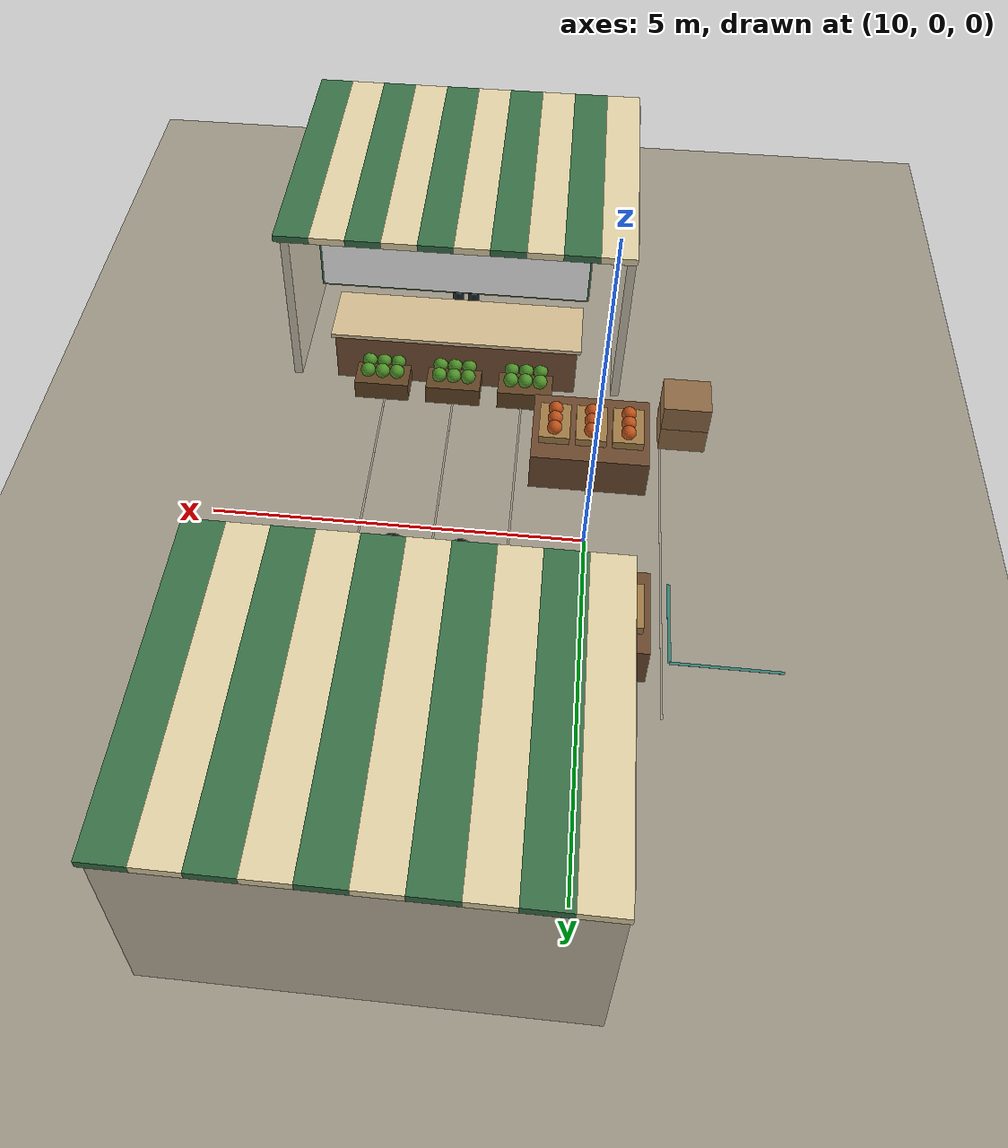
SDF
<sdf version="1.10">
 <world name="swan_market">
  <model name="ground">
   <static>true</static>
   <pose>15 0 -0.1 0 0 0</pose>
   <link name="body">
    <collision name="box_collision"><geometry><box><size>46 24 0.2</size></box></geometry></collision>
    <visual name="box_visual">
     <geometry><box><size>46 24 0.2</size></box></geometry>
     <material><ambient>0.64 0.61 0.55 1</ambient><diffuse>0.64 0.61 0.55 1</diffuse></material>
    </visual>
   </link>
  </model>
  <model name="paving_joint_9">
   <static>true</static>
   <pose>9 0 0.0045 0 0 0</pose>
   <link name="body">
    <visual name="box_visual">
     <geometry><box><size>0.025 5.2 0.001</size></box></geometry>
     <material><ambient>0.67 0.64 0.57 1</ambient><diffuse>0.67 0.64 0.57 1</diffuse></material>
    </visual>
   </link>
  </model>
  <model name="paving_joint_10">
   <static>true</static>
   <pose>10 0 0.0045 0 0 0</pose>
   <link name="body">
    <visual name="box_visual">
     <geometry><box><size>0.025 5.2 0.001</size></box></geometry>
     <material><ambient>0.67 0.64 0.57 1</ambient><diffuse>0.67 0.64 0.57 1</diffuse></material>
    </visual>
   </link>
  </model>
  <model name="paving_joint_11">
   <static>true</static>
   <pose>11 0 0.0045 0 0 0</pose>
   <link name="body">
    <visual name="box_visual">
     <geometry><box><size>0.025 5.2 0.001</size></box></geometry>
     <material><ambient>0.67 0.64 0.57 1</ambient><diffuse>0.67 0.64 0.57 1</diffuse></material>
    </visual>
   </link>
  </model>
  <model name="paving_joint_12">
   <static>true</static>
   <pose>12 0 0.0045 0 0 0</pose>
   <link name="body">
    <visual name="box_visual">
     <geometry><box><size>0.025 5.2 0.001</size></box></geometry>
     <material><ambient>0.67 0.64 0.57 1</ambient><diffuse>0.67 0.64 0.57 1</diffuse></material>
    </visual>
   </link>
  </model>
  <model name="paving_joint_13">
   <static>true</static>
   <pose>13 0 0.0045 0 0 0</pose>
   <link name="body">
    <visual name="box_visual">
     <geometry><box><size>0.025 5.2 0.001</size></box></geometry>
     <material><ambient>0.67 0.64 0.57 1</ambient><diffuse>0.67 0.64 0.57 1</diffuse></material>
    </visual>
   </link>
  </model>
  <model name="stall_01">
   <static>true</static>
   <pose>12 4.45 0 0 0 0</pose>
   <link name="body">
    <collision name="rear_collision">
     <pose>0 1.65 1.4 0 0 0</pose>
     <geometry><box><size>4.8 0.15 2.8</size></box></geometry>
    </collision>
    <visual name="rear_visual">
     <pose>0 1.65 1.4 0 0 0</pose>
     <geometry><box><size>4.8 0.15 2.8</size></box></geometry>
     <material><ambient>0.78 0.74 0.65 1</ambient><diffuse>0.78 0.74 0.65 1</diffuse></material>
    </visual>
    <collision name="side_-2.35_collision">
     <pose>-2.35 0 1.4 0 0 0</pose>
     <geometry><box><size>0.12 3.3 2.8</size></box></geometry>
    </collision>
    <visual name="side_-2.35_visual">
     <pose>-2.35 0 1.4 0 0 0</pose>
     <geometry><box><size>0.12 3.3 2.8</size></box></geometry>
     <material><ambient>0.81 0.77 0.69 1</ambient><diffuse>0.81 0.77 0.69 1</diffuse></material>
    </visual>
    <collision name="side_2.35_collision">
     <pose>2.35 0 1.4 0 0 0</pose>
     <geometry><box><size>0.12 3.3 2.8</size></box></geometry>
    </collision>
    <visual name="side_2.35_visual">
     <pose>2.35 0 1.4 0 0 0</pose>
     <geometry><box><size>0.12 3.3 2.8</size></box></geometry>
     <material><ambient>0.81 0.77 0.69 1</ambient><diffuse>0.81 0.77 0.69 1</diffuse></material>
    </visual>
    <collision name="counter_collision">
     <pose>0 -1.22 0.4 0 0 0</pose>
     <geometry><box><size>3.5 0.85 0.8</size></box></geometry>
    </collision>
    <visual name="counter_visual">
     <pose>0 -1.22 0.4 0 0 0</pose>
     <geometry><box><size>3.5 0.85 0.8</size></box></geometry>
     <material><ambient>0.47 0.32 0.21 1</ambient><diffuse>0.47 0.32 0.21 1</diffuse></material>
    </visual>
    <collision name="counter_top_collision">
     <pose>0 -1.22 0.83 0 0 0</pose>
     <geometry><box><size>3.6 0.95 0.06</size></box></geometry>
    </collision>
    <visual name="counter_top_visual">
     <pose>0 -1.22 0.83 0 0 0</pose>
     <geometry><box><size>3.6 0.95 0.06</size></box></geometry>
     <material><ambient>0.86 0.77 0.59 1</ambient><diffuse>0.86 0.77 0.59 1</diffuse></material>
    </visual>
    <collision name="awning_0_collision">
     <pose>-2.16 -0.1 2.78 0 0 0</pose>
     <geometry><box><size>0.48 3.85 0.1</size></box></geometry>
    </collision>
    <visual name="awning_0_visual">
     <pose>-2.16 -0.1 2.78 0 0 0</pose>
     <geometry><box><size>0.48 3.85 0.1</size></box></geometry>
     <material><ambient>0.92 0.86 0.68 1</ambient><diffuse>0.92 0.86 0.68 1</diffuse></material>
    </visual>
    <collision name="awning_1_collision">
     <pose>-1.68 -0.1 2.78 0 0 0</pose>
     <geometry><box><size>0.48 3.85 0.1</size></box></geometry>
    </collision>
    <visual name="awning_1_visual">
     <pose>-1.68 -0.1 2.78 0 0 0</pose>
     <geometry><box><size>0.48 3.85 0.1</size></box></geometry>
     <material><ambient>0.23 0.46 0.29 1</ambient><diffuse>0.23 0.46 0.29 1</diffuse></material>
    </visual>
    <collision name="awning_2_collision">
     <pose>-1.2 -0.1 2.78 0 0 0</pose>
     <geometry><box><size>0.48 3.85 0.1</size></box></geometry>
    </collision>
    <visual name="awning_2_visual">
     <pose>-1.2 -0.1 2.78 0 0 0</pose>
     <geometry><box><size>0.48 3.85 0.1</size></box></geometry>
     <material><ambient>0.92 0.86 0.68 1</ambient><diffuse>0.92 0.86 0.68 1</diffuse></material>
    </visual>
    <collision name="awning_3_collision">
     <pose>-0.72 -0.1 2.78 0 0 0</pose>
     <geometry><box><size>0.48 3.85 0.1</size></box></geometry>
    </collision>
    <visual name="awning_3_visual">
     <pose>-0.72 -0.1 2.78 0 0 0</pose>
     <geometry><box><size>0.48 3.85 0.1</size></box></geometry>
     <material><ambient>0.23 0.46 0.29 1</ambient><diffuse>0.23 0.46 0.29 1</diffuse></material>
    </visual>
    <collision name="awning_4_collision">
     <pose>-0.24 -0.1 2.78 0 0 0</pose>
     <geometry><box><size>0.48 3.85 0.1</size></box></geometry>
    </collision>
    <visual name="awning_4_visual">
     <pose>-0.24 -0.1 2.78 0 0 0</pose>
     <geometry><box><size>0.48 3.85 0.1</size></box></geometry>
     <material><ambient>0.92 0.86 0.68 1</ambient><diffuse>0.92 0.86 0.68 1</diffuse></material>
    </visual>
    <collision name="awning_5_collision">
     <pose>0.24 -0.1 2.78 0 0 0</pose>
     <geometry><box><size>0.48 3.85 0.1</size></box></geometry>
    </collision>
    <visual name="awning_5_visual">
     <pose>0.24 -0.1 2.78 0 0 0</pose>
     <geometry><box><size>0.48 3.85 0.1</size></box></geometry>
     <material><ambient>0.23 0.46 0.29 1</ambient><diffuse>0.23 0.46 0.29 1</diffuse></material>
    </visual>
    <collision name="awning_6_collision">
     <pose>0.72 -0.1 2.78 0 0 0</pose>
     <geometry><box><size>0.48 3.85 0.1</size></box></geometry>
    </collision>
    <visual name="awning_6_visual">
     <pose>0.72 -0.1 2.78 0 0 0</pose>
     <geometry><box><size>0.48 3.85 0.1</size></box></geometry>
     <material><ambient>0.92 0.86 0.68 1</ambient><diffuse>0.92 0.86 0.68 1</diffuse></material>
    </visual>
    <collision name="awning_7_collision">
     <pose>1.2 -0.1 2.78 0 0 0</pose>
     <geometry><box><size>0.48 3.85 0.1</size></box></geometry>
    </collision>
    <visual name="awning_7_visual">
     <pose>1.2 -0.1 2.78 0 0 0</pose>
     <geometry><box><size>0.48 3.85 0.1</size></box></geometry>
     <material><ambient>0.23 0.46 0.29 1</ambient><diffuse>0.23 0.46 0.29 1</diffuse></material>
    </visual>
    <collision name="awning_8_collision">
     <pose>1.68 -0.1 2.78 0 0 0</pose>
     <geometry><box><size>0.48 3.85 0.1</size></box></geometry>
    </collision>
    <visual name="awning_8_visual">
     <pose>1.68 -0.1 2.78 0 0 0</pose>
     <geometry><box><size>0.48 3.85 0.1</size></box></geometry>
     <material><ambient>0.92 0.86 0.68 1</ambient><diffuse>0.92 0.86 0.68 1</diffuse></material>
    </visual>
    <collision name="awning_9_collision">
     <pose>2.16 -0.1 2.78 0 0 0</pose>
     <geometry><box><size>0.48 3.85 0.1</size></box></geometry>
    </collision>
    <visual name="awning_9_visual">
     <pose>2.16 -0.1 2.78 0 0 0</pose>
     <geometry><box><size>0.48 3.85 0.1</size></box></geometry>
     <material><ambient>0.23 0.46 0.29 1</ambient><diffuse>0.23 0.46 0.29 1</diffuse></material>
    </visual>
    <collision name="crate_-1_collision">
     <pose>-1.04 -1.77 0.15 0 0 0</pose>
     <geometry><box><size>0.78 0.6 0.3</size></box></geometry>
    </collision>
    <visual name="crate_-1_visual">
     <pose>-1.04 -1.77 0.15 0 0 0</pose>
     <geometry><box><size>0.78 0.6 0.3</size></box></geometry>
     <material><ambient>0.4 0.28 0.15 1</ambient><diffuse>0.4 0.28 0.15 1</diffuse></material>
    </visual>
    <visual name="produce_-1_0_visual">
     <pose>-1.25 -1.88 0.39 0 0 0</pose>
     <geometry><sphere><radius>0.105</radius></sphere></geometry>
     <material><ambient>0.31 0.58 0.16 1</ambient><diffuse>0.31 0.58 0.16 1</diffuse></material>
    </visual>
    <visual name="produce_-1_1_visual">
     <pose>-1.04 -1.88 0.39 0 0 0</pose>
     <geometry><sphere><radius>0.105</radius></sphere></geometry>
     <material><ambient>0.31 0.58 0.16 1</ambient><diffuse>0.31 0.58 0.16 1</diffuse></material>
    </visual>
    <visual name="produce_-1_2_visual">
     <pose>-0.83 -1.88 0.39 0 0 0</pose>
     <geometry><sphere><radius>0.105</radius></sphere></geometry>
     <material><ambient>0.31 0.58 0.16 1</ambient><diffuse>0.31 0.58 0.16 1</diffuse></material>
    </visual>
    <visual name="produce_-1_3_visual">
     <pose>-1.25 -1.66 0.39 0 0 0</pose>
     <geometry><sphere><radius>0.105</radius></sphere></geometry>
     <material><ambient>0.31 0.58 0.16 1</ambient><diffuse>0.31 0.58 0.16 1</diffuse></material>
    </visual>
    <visual name="produce_-1_4_visual">
     <pose>-1.04 -1.66 0.39 0 0 0</pose>
     <geometry><sphere><radius>0.105</radius></sphere></geometry>
     <material><ambient>0.31 0.58 0.16 1</ambient><diffuse>0.31 0.58 0.16 1</diffuse></material>
    </visual>
    <visual name="produce_-1_5_visual">
     <pose>-0.83 -1.66 0.39 0 0 0</pose>
     <geometry><sphere><radius>0.105</radius></sphere></geometry>
     <material><ambient>0.31 0.58 0.16 1</ambient><diffuse>0.31 0.58 0.16 1</diffuse></material>
    </visual>
    <collision name="crate_0_collision">
     <pose>0 -1.77 0.15 0 0 0</pose>
     <geometry><box><size>0.78 0.6 0.3</size></box></geometry>
    </collision>
    <visual name="crate_0_visual">
     <pose>0 -1.77 0.15 0 0 0</pose>
     <geometry><box><size>0.78 0.6 0.3</size></box></geometry>
     <material><ambient>0.4 0.28 0.15 1</ambient><diffuse>0.4 0.28 0.15 1</diffuse></material>
    </visual>
    <visual name="produce_0_0_visual">
     <pose>-0.21 -1.88 0.39 0 0 0</pose>
     <geometry><sphere><radius>0.105</radius></sphere></geometry>
     <material><ambient>0.31 0.58 0.16 1</ambient><diffuse>0.31 0.58 0.16 1</diffuse></material>
    </visual>
    <visual name="produce_0_1_visual">
     <pose>0 -1.88 0.39 0 0 0</pose>
     <geometry><sphere><radius>0.105</radius></sphere></geometry>
     <material><ambient>0.31 0.58 0.16 1</ambient><diffuse>0.31 0.58 0.16 1</diffuse></material>
    </visual>
    <visual name="produce_0_2_visual">
     <pose>0.21 -1.88 0.39 0 0 0</pose>
     <geometry><sphere><radius>0.105</radius></sphere></geometry>
     <material><ambient>0.31 0.58 0.16 1</ambient><diffuse>0.31 0.58 0.16 1</diffuse></material>
    </visual>
    <visual name="produce_0_3_visual">
     <pose>-0.21 -1.66 0.39 0 0 0</pose>
     <geometry><sphere><radius>0.105</radius></sphere></geometry>
     <material><ambient>0.31 0.58 0.16 1</ambient><diffuse>0.31 0.58 0.16 1</diffuse></material>
    </visual>
    <visual name="produce_0_4_visual">
     <pose>0 -1.66 0.39 0 0 0</pose>
     <geometry><sphere><radius>0.105</radius></sphere></geometry>
     <material><ambient>0.31 0.58 0.16 1</ambient><diffuse>0.31 0.58 0.16 1</diffuse></material>
    </visual>
    <visual name="produce_0_5_visual">
     <pose>0.21 -1.66 0.39 0 0 0</pose>
     <geometry><sphere><radius>0.105</radius></sphere></geometry>
     <material><ambient>0.31 0.58 0.16 1</ambient><diffuse>0.31 0.58 0.16 1</diffuse></material>
    </visual>
    <collision name="crate_1_collision">
     <pose>1.04 -1.77 0.15 0 0 0</pose>
     <geometry><box><size>0.78 0.6 0.3</size></box></geometry>
    </collision>
    <visual name="crate_1_visual">
     <pose>1.04 -1.77 0.15 0 0 0</pose>
     <geometry><box><size>0.78 0.6 0.3</size></box></geometry>
     <material><ambient>0.4 0.28 0.15 1</ambient><diffuse>0.4 0.28 0.15 1</diffuse></material>
    </visual>
    <visual name="produce_1_0_visual">
     <pose>0.83 -1.88 0.39 0 0 0</pose>
     <geometry><sphere><radius>0.105</radius></sphere></geometry>
     <material><ambient>0.31 0.58 0.16 1</ambient><diffuse>0.31 0.58 0.16 1</diffuse></material>
    </visual>
    <visual name="produce_1_1_visual">
     <pose>1.04 -1.88 0.39 0 0 0</pose>
     <geometry><sphere><radius>0.105</radius></sphere></geometry>
     <material><ambient>0.31 0.58 0.16 1</ambient><diffuse>0.31 0.58 0.16 1</diffuse></material>
    </visual>
    <visual name="produce_1_2_visual">
     <pose>1.25 -1.88 0.39 0 0 0</pose>
     <geometry><sphere><radius>0.105</radius></sphere></geometry>
     <material><ambient>0.31 0.58 0.16 1</ambient><diffuse>0.31 0.58 0.16 1</diffuse></material>
    </visual>
    <visual name="produce_1_3_visual">
     <pose>0.83 -1.66 0.39 0 0 0</pose>
     <geometry><sphere><radius>0.105</radius></sphere></geometry>
     <material><ambient>0.31 0.58 0.16 1</ambient><diffuse>0.31 0.58 0.16 1</diffuse></material>
    </visual>
    <visual name="produce_1_4_visual">
     <pose>1.04 -1.66 0.39 0 0 0</pose>
     <geometry><sphere><radius>0.105</radius></sphere></geometry>
     <material><ambient>0.31 0.58 0.16 1</ambient><diffuse>0.31 0.58 0.16 1</diffuse></material>
    </visual>
    <visual name="produce_1_5_visual">
     <pose>1.25 -1.66 0.39 0 0 0</pose>
     <geometry><sphere><radius>0.105</radius></sphere></geometry>
     <material><ambient>0.31 0.58 0.16 1</ambient><diffuse>0.31 0.58 0.16 1</diffuse></material>
    </visual>
   </link>
  </model>
  <model name="signboard_1">
   <static>true</static>
   <pose>12 2.69 2.24 0 0 0</pose>
   <link name="body">
    <collision name="box_collision"><geometry><box><size>3.65 0.08 0.72</size></box></geometry></collision>
    <visual name="box_visual">
     <geometry><box><size>3.65 0.08 0.72</size></box></geometry>
     <material><ambient>0.23 0.46 0.29 1</ambient><diffuse>0.23 0.46 0.29 1</diffuse></material>
    </visual>
   </link>
  </model>
  <model name="sign_shop_1">
   <static>true</static>
   <pose>12 2.642 2.24 0 0 0</pose>
   <link name="body">
    <visual name="lettering">
     <geometry>
      <mesh><uri>model://swan_market_assets/meshes/shop_1.dae</uri><scale>3.6 1 0.675</scale></mesh>
     </geometry>
     <material>
      <ambient>1 1 1 1</ambient>
      <diffuse>1 1 1 1</diffuse>
      <emissive>0 0 0 1</emissive>
      <pbr>
       <metal>
        <albedo_map>model://swan_market_assets/materials/textures/shop_1.png</albedo_map>
        <metalness>0</metalness>
        <roughness>1</roughness>
       </metal>
      </pbr>
     </material>
    </visual>
   </link>
  </model>
  <model name="stall_05">
   <static>true</static>
   <pose>12 -4.45 0 0 0 0</pose>
   <link name="body">
    <collision name="rear_collision">
     <pose>0 -1.65 1.4 0 0 0</pose>
     <geometry><box><size>4.8 0.15 2.8</size></box></geometry>
    </collision>
    <visual name="rear_visual">
     <pose>0 -1.65 1.4 0 0 0</pose>
     <geometry><box><size>4.8 0.15 2.8</size></box></geometry>
     <material><ambient>0.78 0.74 0.65 1</ambient><diffuse>0.78 0.74 0.65 1</diffuse></material>
    </visual>
    <collision name="side_-2.35_collision">
     <pose>-2.35 0 1.4 0 0 0</pose>
     <geometry><box><size>0.12 3.3 2.8</size></box></geometry>
    </collision>
    <visual name="side_-2.35_visual">
     <pose>-2.35 0 1.4 0 0 0</pose>
     <geometry><box><size>0.12 3.3 2.8</size></box></geometry>
     <material><ambient>0.81 0.77 0.69 1</ambient><diffuse>0.81 0.77 0.69 1</diffuse></material>
    </visual>
    <collision name="side_2.35_collision">
     <pose>2.35 0 1.4 0 0 0</pose>
     <geometry><box><size>0.12 3.3 2.8</size></box></geometry>
    </collision>
    <visual name="side_2.35_visual">
     <pose>2.35 0 1.4 0 0 0</pose>
     <geometry><box><size>0.12 3.3 2.8</size></box></geometry>
     <material><ambient>0.81 0.77 0.69 1</ambient><diffuse>0.81 0.77 0.69 1</diffuse></material>
    </visual>
    <collision name="counter_collision">
     <pose>0 1.22 0.4 0 0 0</pose>
     <geometry><box><size>3.5 0.85 0.8</size></box></geometry>
    </collision>
    <visual name="counter_visual">
     <pose>0 1.22 0.4 0 0 0</pose>
     <geometry><box><size>3.5 0.85 0.8</size></box></geometry>
     <material><ambient>0.47 0.32 0.21 1</ambient><diffuse>0.47 0.32 0.21 1</diffuse></material>
    </visual>
    <collision name="counter_top_collision">
     <pose>0 1.22 0.83 0 0 0</pose>
     <geometry><box><size>3.6 0.95 0.06</size></box></geometry>
    </collision>
    <visual name="counter_top_visual">
     <pose>0 1.22 0.83 0 0 0</pose>
     <geometry><box><size>3.6 0.95 0.06</size></box></geometry>
     <material><ambient>0.86 0.77 0.59 1</ambient><diffuse>0.86 0.77 0.59 1</diffuse></material>
    </visual>
    <collision name="awning_0_collision">
     <pose>-2.16 0.1 2.78 0 0 0</pose>
     <geometry><box><size>0.48 3.85 0.1</size></box></geometry>
    </collision>
    <visual name="awning_0_visual">
     <pose>-2.16 0.1 2.78 0 0 0</pose>
     <geometry><box><size>0.48 3.85 0.1</size></box></geometry>
     <material><ambient>0.92 0.86 0.68 1</ambient><diffuse>0.92 0.86 0.68 1</diffuse></material>
    </visual>
    <collision name="awning_1_collision">
     <pose>-1.68 0.1 2.78 0 0 0</pose>
     <geometry><box><size>0.48 3.85 0.1</size></box></geometry>
    </collision>
    <visual name="awning_1_visual">
     <pose>-1.68 0.1 2.78 0 0 0</pose>
     <geometry><box><size>0.48 3.85 0.1</size></box></geometry>
     <material><ambient>0.23 0.46 0.29 1</ambient><diffuse>0.23 0.46 0.29 1</diffuse></material>
    </visual>
    <collision name="awning_2_collision">
     <pose>-1.2 0.1 2.78 0 0 0</pose>
     <geometry><box><size>0.48 3.85 0.1</size></box></geometry>
    </collision>
    <visual name="awning_2_visual">
     <pose>-1.2 0.1 2.78 0 0 0</pose>
     <geometry><box><size>0.48 3.85 0.1</size></box></geometry>
     <material><ambient>0.92 0.86 0.68 1</ambient><diffuse>0.92 0.86 0.68 1</diffuse></material>
    </visual>
    <collision name="awning_3_collision">
     <pose>-0.72 0.1 2.78 0 0 0</pose>
     <geometry><box><size>0.48 3.85 0.1</size></box></geometry>
    </collision>
    <visual name="awning_3_visual">
     <pose>-0.72 0.1 2.78 0 0 0</pose>
     <geometry><box><size>0.48 3.85 0.1</size></box></geometry>
     <material><ambient>0.23 0.46 0.29 1</ambient><diffuse>0.23 0.46 0.29 1</diffuse></material>
    </visual>
    <collision name="awning_4_collision">
     <pose>-0.24 0.1 2.78 0 0 0</pose>
     <geometry><box><size>0.48 3.85 0.1</size></box></geometry>
    </collision>
    <visual name="awning_4_visual">
     <pose>-0.24 0.1 2.78 0 0 0</pose>
     <geometry><box><size>0.48 3.85 0.1</size></box></geometry>
     <material><ambient>0.92 0.86 0.68 1</ambient><diffuse>0.92 0.86 0.68 1</diffuse></material>
    </visual>
    <collision name="awning_5_collision">
     <pose>0.24 0.1 2.78 0 0 0</pose>
     <geometry><box><size>0.48 3.85 0.1</size></box></geometry>
    </collision>
    <visual name="awning_5_visual">
     <pose>0.24 0.1 2.78 0 0 0</pose>
     <geometry><box><size>0.48 3.85 0.1</size></box></geometry>
     <material><ambient>0.23 0.46 0.29 1</ambient><diffuse>0.23 0.46 0.29 1</diffuse></material>
    </visual>
    <collision name="awning_6_collision">
     <pose>0.72 0.1 2.78 0 0 0</pose>
     <geometry><box><size>0.48 3.85 0.1</size></box></geometry>
    </collision>
    <visual name="awning_6_visual">
     <pose>0.72 0.1 2.78 0 0 0</pose>
     <geometry><box><size>0.48 3.85 0.1</size></box></geometry>
     <material><ambient>0.92 0.86 0.68 1</ambient><diffuse>0.92 0.86 0.68 1</diffuse></material>
    </visual>
    <collision name="awning_7_collision">
     <pose>1.2 0.1 2.78 0 0 0</pose>
     <geometry><box><size>0.48 3.85 0.1</size></box></geometry>
    </collision>
    <visual name="awning_7_visual">
     <pose>1.2 0.1 2.78 0 0 0</pose>
     <geometry><box><size>0.48 3.85 0.1</size></box></geometry>
     <material><ambient>0.23 0.46 0.29 1</ambient><diffuse>0.23 0.46 0.29 1</diffuse></material>
    </visual>
    <collision name="awning_8_collision">
     <pose>1.68 0.1 2.78 0 0 0</pose>
     <geometry><box><size>0.48 3.85 0.1</size></box></geometry>
    </collision>
    <visual name="awning_8_visual">
     <pose>1.68 0.1 2.78 0 0 0</pose>
     <geometry><box><size>0.48 3.85 0.1</size></box></geometry>
     <material><ambient>0.92 0.86 0.68 1</ambient><diffuse>0.92 0.86 0.68 1</diffuse></material>
    </visual>
    <collision name="awning_9_collision">
     <pose>2.16 0.1 2.78 0 0 0</pose>
     <geometry><box><size>0.48 3.85 0.1</size></box></geometry>
    </collision>
    <visual name="awning_9_visual">
     <pose>2.16 0.1 2.78 0 0 0</pose>
     <geometry><box><size>0.48 3.85 0.1</size></box></geometry>
     <material><ambient>0.23 0.46 0.29 1</ambient><diffuse>0.23 0.46 0.29 1</diffuse></material>
    </visual>
    <collision name="crate_-1_collision">
     <pose>-1.04 1.77 0.15 0 0 0</pose>
     <geometry><box><size>0.78 0.6 0.3</size></box></geometry>
    </collision>
    <visual name="crate_-1_visual">
     <pose>-1.04 1.77 0.15 0 0 0</pose>
     <geometry><box><size>0.78 0.6 0.3</size></box></geometry>
     <material><ambient>0.4 0.28 0.15 1</ambient><diffuse>0.4 0.28 0.15 1</diffuse></material>
    </visual>
    <visual name="produce_-1_0_visual">
     <pose>-1.25 1.66 0.39 0 0 0</pose>
     <geometry><sphere><radius>0.105</radius></sphere></geometry>
     <material><ambient>0.31 0.58 0.16 1</ambient><diffuse>0.31 0.58 0.16 1</diffuse></material>
    </visual>
    <visual name="produce_-1_1_visual">
     <pose>-1.04 1.66 0.39 0 0 0</pose>
     <geometry><sphere><radius>0.105</radius></sphere></geometry>
     <material><ambient>0.31 0.58 0.16 1</ambient><diffuse>0.31 0.58 0.16 1</diffuse></material>
    </visual>
    <visual name="produce_-1_2_visual">
     <pose>-0.83 1.66 0.39 0 0 0</pose>
     <geometry><sphere><radius>0.105</radius></sphere></geometry>
     <material><ambient>0.31 0.58 0.16 1</ambient><diffuse>0.31 0.58 0.16 1</diffuse></material>
    </visual>
    <visual name="produce_-1_3_visual">
     <pose>-1.25 1.88 0.39 0 0 0</pose>
     <geometry><sphere><radius>0.105</radius></sphere></geometry>
     <material><ambient>0.31 0.58 0.16 1</ambient><diffuse>0.31 0.58 0.16 1</diffuse></material>
    </visual>
    <visual name="produce_-1_4_visual">
     <pose>-1.04 1.88 0.39 0 0 0</pose>
     <geometry><sphere><radius>0.105</radius></sphere></geometry>
     <material><ambient>0.31 0.58 0.16 1</ambient><diffuse>0.31 0.58 0.16 1</diffuse></material>
    </visual>
    <visual name="produce_-1_5_visual">
     <pose>-0.83 1.88 0.39 0 0 0</pose>
     <geometry><sphere><radius>0.105</radius></sphere></geometry>
     <material><ambient>0.31 0.58 0.16 1</ambient><diffuse>0.31 0.58 0.16 1</diffuse></material>
    </visual>
    <collision name="crate_0_collision">
     <pose>0 1.77 0.15 0 0 0</pose>
     <geometry><box><size>0.78 0.6 0.3</size></box></geometry>
    </collision>
    <visual name="crate_0_visual">
     <pose>0 1.77 0.15 0 0 0</pose>
     <geometry><box><size>0.78 0.6 0.3</size></box></geometry>
     <material><ambient>0.4 0.28 0.15 1</ambient><diffuse>0.4 0.28 0.15 1</diffuse></material>
    </visual>
    <visual name="produce_0_0_visual">
     <pose>-0.21 1.66 0.39 0 0 0</pose>
     <geometry><sphere><radius>0.105</radius></sphere></geometry>
     <material><ambient>0.31 0.58 0.16 1</ambient><diffuse>0.31 0.58 0.16 1</diffuse></material>
    </visual>
    <visual name="produce_0_1_visual">
     <pose>0 1.66 0.39 0 0 0</pose>
     <geometry><sphere><radius>0.105</radius></sphere></geometry>
     <material><ambient>0.31 0.58 0.16 1</ambient><diffuse>0.31 0.58 0.16 1</diffuse></material>
    </visual>
    <visual name="produce_0_2_visual">
     <pose>0.21 1.66 0.39 0 0 0</pose>
     <geometry><sphere><radius>0.105</radius></sphere></geometry>
     <material><ambient>0.31 0.58 0.16 1</ambient><diffuse>0.31 0.58 0.16 1</diffuse></material>
    </visual>
    <visual name="produce_0_3_visual">
     <pose>-0.21 1.88 0.39 0 0 0</pose>
     <geometry><sphere><radius>0.105</radius></sphere></geometry>
     <material><ambient>0.31 0.58 0.16 1</ambient><diffuse>0.31 0.58 0.16 1</diffuse></material>
    </visual>
    <visual name="produce_0_4_visual">
     <pose>0 1.88 0.39 0 0 0</pose>
     <geometry><sphere><radius>0.105</radius></sphere></geometry>
     <material><ambient>0.31 0.58 0.16 1</ambient><diffuse>0.31 0.58 0.16 1</diffuse></material>
    </visual>
    <visual name="produce_0_5_visual">
     <pose>0.21 1.88 0.39 0 0 0</pose>
     <geometry><sphere><radius>0.105</radius></sphere></geometry>
     <material><ambient>0.31 0.58 0.16 1</ambient><diffuse>0.31 0.58 0.16 1</diffuse></material>
    </visual>
    <collision name="crate_1_collision">
     <pose>1.04 1.77 0.15 0 0 0</pose>
     <geometry><box><size>0.78 0.6 0.3</size></box></geometry>
    </collision>
    <visual name="crate_1_visual">
     <pose>1.04 1.77 0.15 0 0 0</pose>
     <geometry><box><size>0.78 0.6 0.3</size></box></geometry>
     <material><ambient>0.4 0.28 0.15 1</ambient><diffuse>0.4 0.28 0.15 1</diffuse></material>
    </visual>
    <visual name="produce_1_0_visual">
     <pose>0.83 1.66 0.39 0 0 0</pose>
     <geometry><sphere><radius>0.105</radius></sphere></geometry>
     <material><ambient>0.31 0.58 0.16 1</ambient><diffuse>0.31 0.58 0.16 1</diffuse></material>
    </visual>
    <visual name="produce_1_1_visual">
     <pose>1.04 1.66 0.39 0 0 0</pose>
     <geometry><sphere><radius>0.105</radius></sphere></geometry>
     <material><ambient>0.31 0.58 0.16 1</ambient><diffuse>0.31 0.58 0.16 1</diffuse></material>
    </visual>
    <visual name="produce_1_2_visual">
     <pose>1.25 1.66 0.39 0 0 0</pose>
     <geometry><sphere><radius>0.105</radius></sphere></geometry>
     <material><ambient>0.31 0.58 0.16 1</ambient><diffuse>0.31 0.58 0.16 1</diffuse></material>
    </visual>
    <visual name="produce_1_3_visual">
     <pose>0.83 1.88 0.39 0 0 0</pose>
     <geometry><sphere><radius>0.105</radius></sphere></geometry>
     <material><ambient>0.31 0.58 0.16 1</ambient><diffuse>0.31 0.58 0.16 1</diffuse></material>
    </visual>
    <visual name="produce_1_4_visual">
     <pose>1.04 1.88 0.39 0 0 0</pose>
     <geometry><sphere><radius>0.105</radius></sphere></geometry>
     <material><ambient>0.31 0.58 0.16 1</ambient><diffuse>0.31 0.58 0.16 1</diffuse></material>
    </visual>
    <visual name="produce_1_5_visual">
     <pose>1.25 1.88 0.39 0 0 0</pose>
     <geometry><sphere><radius>0.105</radius></sphere></geometry>
     <material><ambient>0.31 0.58 0.16 1</ambient><diffuse>0.31 0.58 0.16 1</diffuse></material>
    </visual>
   </link>
  </model>
  <model name="signboard_5">
   <static>true</static>
   <pose>12 -2.69 2.24 0 0 0</pose>
   <link name="body">
    <collision name="box_collision"><geometry><box><size>3.65 0.08 0.72</size></box></geometry></collision>
    <visual name="box_visual">
     <geometry><box><size>3.65 0.08 0.72</size></box></geometry>
     <material><ambient>0.23 0.46 0.29 1</ambient><diffuse>0.23 0.46 0.29 1</diffuse></material>
    </visual>
   </link>
  </model>
  <model name="sign_shop_5">
   <static>true</static>
   <pose>12 -2.642 2.24 0 0 3.1416</pose>
   <link name="body">
    <visual name="lettering">
     <geometry>
      <mesh><uri>model://swan_market_assets/meshes/shop_5.dae</uri><scale>3.6 1 0.675</scale></mesh>
     </geometry>
     <material>
      <ambient>1 1 1 1</ambient>
      <diffuse>1 1 1 1</diffuse>
      <emissive>0 0 0 1</emissive>
      <pbr>
       <metal>
        <albedo_map>model://swan_market_assets/materials/textures/shop_5.png</albedo_map>
        <metalness>0</metalness>
        <roughness>1</roughness>
       </metal>
      </pbr>
     </material>
    </visual>
   </link>
  </model>
  <model name="vendor_1">
   <static>true</static>
   <pose>12 -4.45 0 0 0 1.5708</pose>
   <link name="body">
    <collision name="leg_-1_collision">
     <pose>0 -0.12 0.4 0 0 0</pose>
     <geometry><cylinder><radius>0.085</radius><length>0.68</length></cylinder></geometry>
    </collision>
    <visual name="leg_-1_visual">
     <pose>0 -0.12 0.4 0 0 0</pose>
     <geometry><cylinder><radius>0.085</radius><length>0.68</length></cylinder></geometry>
     <material><ambient>0.12 0.15 0.18 1</ambient><diffuse>0.12 0.15 0.18 1</diffuse></material>
    </visual>
    <collision name="shoe_-1_collision">
     <pose>0.06 -0.12 0.055 0 0 0</pose>
     <geometry><box><size>0.28 0.17 0.11</size></box></geometry>
    </collision>
    <visual name="shoe_-1_visual">
     <pose>0.06 -0.12 0.055 0 0 0</pose>
     <geometry><box><size>0.28 0.17 0.11</size></box></geometry>
     <material><ambient>0.08 0.07 0.06 1</ambient><diffuse>0.08 0.07 0.06 1</diffuse></material>
    </visual>
    <collision name="arm_-1_collision">
     <pose>0.02 -0.27 1.02 0 -0.12 0</pose>
     <geometry><cylinder><radius>0.068</radius><length>0.48</length></cylinder></geometry>
    </collision>
    <visual name="arm_-1_visual">
     <pose>0.02 -0.27 1.02 0 -0.12 0</pose>
     <geometry><cylinder><radius>0.068</radius><length>0.48</length></cylinder></geometry>
     <material><ambient>0.79 0.69 0.48 1</ambient><diffuse>0.79 0.69 0.48 1</diffuse></material>
    </visual>
    <collision name="leg_1_collision">
     <pose>0 0.12 0.4 0 0 0</pose>
     <geometry><cylinder><radius>0.085</radius><length>0.68</length></cylinder></geometry>
    </collision>
    <visual name="leg_1_visual">
     <pose>0 0.12 0.4 0 0 0</pose>
     <geometry><cylinder><radius>0.085</radius><length>0.68</length></cylinder></geometry>
     <material><ambient>0.12 0.15 0.18 1</ambient><diffuse>0.12 0.15 0.18 1</diffuse></material>
    </visual>
    <collision name="shoe_1_collision">
     <pose>0.06 0.12 0.055 0 0 0</pose>
     <geometry><box><size>0.28 0.17 0.11</size></box></geometry>
    </collision>
    <visual name="shoe_1_visual">
     <pose>0.06 0.12 0.055 0 0 0</pose>
     <geometry><box><size>0.28 0.17 0.11</size></box></geometry>
     <material><ambient>0.08 0.07 0.06 1</ambient><diffuse>0.08 0.07 0.06 1</diffuse></material>
    </visual>
    <collision name="arm_1_collision">
     <pose>0.02 0.27 1.02 0 0.12 0</pose>
     <geometry><cylinder><radius>0.068</radius><length>0.48</length></cylinder></geometry>
    </collision>
    <visual name="arm_1_visual">
     <pose>0.02 0.27 1.02 0 0.12 0</pose>
     <geometry><cylinder><radius>0.068</radius><length>0.48</length></cylinder></geometry>
     <material><ambient>0.79 0.69 0.48 1</ambient><diffuse>0.79 0.69 0.48 1</diffuse></material>
    </visual>
    <collision name="torso_collision">
     <pose>0 0 1.02 0 0 0</pose>
     <geometry><box><size>0.3 0.43 0.58</size></box></geometry>
    </collision>
    <visual name="torso_visual">
     <pose>0 0 1.02 0 0 0</pose>
     <geometry><box><size>0.3 0.43 0.58</size></box></geometry>
     <material><ambient>0.79 0.69 0.48 1</ambient><diffuse>0.79 0.69 0.48 1</diffuse></material>
    </visual>
    <visual name="neck_visual">
     <pose>0 0 1.37 0 0 0</pose>
     <geometry><cylinder><radius>0.07</radius><length>0.13</length></cylinder></geometry>
     <material><ambient>0.77 0.56 0.4 1</ambient><diffuse>0.77 0.56 0.4 1</diffuse></material>
    </visual>
    <collision name="head_collision">
     <pose>0 0 1.57 0 0 0</pose>
     <geometry><sphere><radius>0.16</radius></sphere></geometry>
    </collision>
    <visual name="head_visual">
     <pose>0 0 1.57 0 0 0</pose>
     <geometry><sphere><radius>0.16</radius></sphere></geometry>
     <material><ambient>0.77 0.56 0.4 1</ambient><diffuse>0.77 0.56 0.4 1</diffuse></material>
    </visual>
    <visual name="hair_visual">
     <pose>-0.025 0 1.63 0 0 0</pose>
     <geometry><sphere><radius>0.155</radius></sphere></geometry>
     <material><ambient>0.1 0.08 0.06 1</ambient><diffuse>0.1 0.08 0.06 1</diffuse></material>
    </visual>
   </link>
  </model>
  <model name="aisle_display_-1">
   <static>true</static>
   <pose>10 -1.5 0.3 0 0 0</pose>
   <link name="body">
    <collision name="box_collision"><geometry><box><size>1.6 1.2 0.6</size></box></geometry></collision>
    <visual name="box_visual">
     <geometry><box><size>1.6 1.2 0.6</size></box></geometry>
     <material><ambient>0.44 0.3 0.19 1</ambient><diffuse>0.44 0.3 0.19 1</diffuse></material>
    </visual>
    <collision name="basket_-0.5_collision">
     <pose>-0.5 0 0.36 0 0 0</pose>
     <geometry><box><size>0.42 0.65 0.12</size></box></geometry>
    </collision>
    <visual name="basket_-0.5_visual">
     <pose>-0.5 0 0.36 0 0 0</pose>
     <geometry><box><size>0.42 0.65 0.12</size></box></geometry>
     <material><ambient>0.66 0.51 0.29 1</ambient><diffuse>0.66 0.51 0.29 1</diffuse></material>
    </visual>
    <visual name="goods_-0.5_-1_visual">
     <pose>-0.5 -0.18 0.47 0 0 0</pose>
     <geometry><sphere><radius>0.1</radius></sphere></geometry>
     <material><ambient>0.76 0.32 0.1 1</ambient><diffuse>0.76 0.32 0.1 1</diffuse></material>
    </visual>
    <visual name="goods_-0.5_0_visual">
     <pose>-0.5 0 0.47 0 0 0</pose>
     <geometry><sphere><radius>0.1</radius></sphere></geometry>
     <material><ambient>0.76 0.32 0.1 1</ambient><diffuse>0.76 0.32 0.1 1</diffuse></material>
    </visual>
    <visual name="goods_-0.5_1_visual">
     <pose>-0.5 0.18 0.47 0 0 0</pose>
     <geometry><sphere><radius>0.1</radius></sphere></geometry>
     <material><ambient>0.76 0.32 0.1 1</ambient><diffuse>0.76 0.32 0.1 1</diffuse></material>
    </visual>
    <collision name="basket_0_collision">
     <pose>0 0 0.36 0 0 0</pose>
     <geometry><box><size>0.42 0.65 0.12</size></box></geometry>
    </collision>
    <visual name="basket_0_visual">
     <pose>0 0 0.36 0 0 0</pose>
     <geometry><box><size>0.42 0.65 0.12</size></box></geometry>
     <material><ambient>0.66 0.51 0.29 1</ambient><diffuse>0.66 0.51 0.29 1</diffuse></material>
    </visual>
    <visual name="goods_0_-1_visual">
     <pose>0 -0.18 0.47 0 0 0</pose>
     <geometry><sphere><radius>0.1</radius></sphere></geometry>
     <material><ambient>0.76 0.32 0.1 1</ambient><diffuse>0.76 0.32 0.1 1</diffuse></material>
    </visual>
    <visual name="goods_0_0_visual">
     <pose>0 0 0.47 0 0 0</pose>
     <geometry><sphere><radius>0.1</radius></sphere></geometry>
     <material><ambient>0.76 0.32 0.1 1</ambient><diffuse>0.76 0.32 0.1 1</diffuse></material>
    </visual>
    <visual name="goods_0_1_visual">
     <pose>0 0.18 0.47 0 0 0</pose>
     <geometry><sphere><radius>0.1</radius></sphere></geometry>
     <material><ambient>0.76 0.32 0.1 1</ambient><diffuse>0.76 0.32 0.1 1</diffuse></material>
    </visual>
    <collision name="basket_0.5_collision">
     <pose>0.5 0 0.36 0 0 0</pose>
     <geometry><box><size>0.42 0.65 0.12</size></box></geometry>
    </collision>
    <visual name="basket_0.5_visual">
     <pose>0.5 0 0.36 0 0 0</pose>
     <geometry><box><size>0.42 0.65 0.12</size></box></geometry>
     <material><ambient>0.66 0.51 0.29 1</ambient><diffuse>0.66 0.51 0.29 1</diffuse></material>
    </visual>
    <visual name="goods_0.5_-1_visual">
     <pose>0.5 -0.18 0.47 0 0 0</pose>
     <geometry><sphere><radius>0.1</radius></sphere></geometry>
     <material><ambient>0.76 0.32 0.1 1</ambient><diffuse>0.76 0.32 0.1 1</diffuse></material>
    </visual>
    <visual name="goods_0.5_0_visual">
     <pose>0.5 0 0.47 0 0 0</pose>
     <geometry><sphere><radius>0.1</radius></sphere></geometry>
     <material><ambient>0.76 0.32 0.1 1</ambient><diffuse>0.76 0.32 0.1 1</diffuse></material>
    </visual>
    <visual name="goods_0.5_1_visual">
     <pose>0.5 0.18 0.47 0 0 0</pose>
     <geometry><sphere><radius>0.1</radius></sphere></geometry>
     <material><ambient>0.76 0.32 0.1 1</ambient><diffuse>0.76 0.32 0.1 1</diffuse></material>
    </visual>
   </link>
  </model>
  <model name="aisle_display_1">
   <static>true</static>
   <pose>10 1.5 0.3 0 0 0</pose>
   <link name="body">
    <collision name="box_collision"><geometry><box><size>1.6 1.2 0.6</size></box></geometry></collision>
    <visual name="box_visual">
     <geometry><box><size>1.6 1.2 0.6</size></box></geometry>
     <material><ambient>0.44 0.3 0.19 1</ambient><diffuse>0.44 0.3 0.19 1</diffuse></material>
    </visual>
    <collision name="basket_-0.5_collision">
     <pose>-0.5 0 0.36 0 0 0</pose>
     <geometry><box><size>0.42 0.65 0.12</size></box></geometry>
    </collision>
    <visual name="basket_-0.5_visual">
     <pose>-0.5 0 0.36 0 0 0</pose>
     <geometry><box><size>0.42 0.65 0.12</size></box></geometry>
     <material><ambient>0.66 0.51 0.29 1</ambient><diffuse>0.66 0.51 0.29 1</diffuse></material>
    </visual>
    <visual name="goods_-0.5_-1_visual">
     <pose>-0.5 -0.18 0.47 0 0 0</pose>
     <geometry><sphere><radius>0.1</radius></sphere></geometry>
     <material><ambient>0.76 0.32 0.1 1</ambient><diffuse>0.76 0.32 0.1 1</diffuse></material>
    </visual>
    <visual name="goods_-0.5_0_visual">
     <pose>-0.5 0 0.47 0 0 0</pose>
     <geometry><sphere><radius>0.1</radius></sphere></geometry>
     <material><ambient>0.76 0.32 0.1 1</ambient><diffuse>0.76 0.32 0.1 1</diffuse></material>
    </visual>
    <visual name="goods_-0.5_1_visual">
     <pose>-0.5 0.18 0.47 0 0 0</pose>
     <geometry><sphere><radius>0.1</radius></sphere></geometry>
     <material><ambient>0.76 0.32 0.1 1</ambient><diffuse>0.76 0.32 0.1 1</diffuse></material>
    </visual>
    <collision name="basket_0_collision">
     <pose>0 0 0.36 0 0 0</pose>
     <geometry><box><size>0.42 0.65 0.12</size></box></geometry>
    </collision>
    <visual name="basket_0_visual">
     <pose>0 0 0.36 0 0 0</pose>
     <geometry><box><size>0.42 0.65 0.12</size></box></geometry>
     <material><ambient>0.66 0.51 0.29 1</ambient><diffuse>0.66 0.51 0.29 1</diffuse></material>
    </visual>
    <visual name="goods_0_-1_visual">
     <pose>0 -0.18 0.47 0 0 0</pose>
     <geometry><sphere><radius>0.1</radius></sphere></geometry>
     <material><ambient>0.76 0.32 0.1 1</ambient><diffuse>0.76 0.32 0.1 1</diffuse></material>
    </visual>
    <visual name="goods_0_0_visual">
     <pose>0 0 0.47 0 0 0</pose>
     <geometry><sphere><radius>0.1</radius></sphere></geometry>
     <material><ambient>0.76 0.32 0.1 1</ambient><diffuse>0.76 0.32 0.1 1</diffuse></material>
    </visual>
    <visual name="goods_0_1_visual">
     <pose>0 0.18 0.47 0 0 0</pose>
     <geometry><sphere><radius>0.1</radius></sphere></geometry>
     <material><ambient>0.76 0.32 0.1 1</ambient><diffuse>0.76 0.32 0.1 1</diffuse></material>
    </visual>
    <collision name="basket_0.5_collision">
     <pose>0.5 0 0.36 0 0 0</pose>
     <geometry><box><size>0.42 0.65 0.12</size></box></geometry>
    </collision>
    <visual name="basket_0.5_visual">
     <pose>0.5 0 0.36 0 0 0</pose>
     <geometry><box><size>0.42 0.65 0.12</size></box></geometry>
     <material><ambient>0.66 0.51 0.29 1</ambient><diffuse>0.66 0.51 0.29 1</diffuse></material>
    </visual>
    <visual name="goods_0.5_-1_visual">
     <pose>0.5 -0.18 0.47 0 0 0</pose>
     <geometry><sphere><radius>0.1</radius></sphere></geometry>
     <material><ambient>0.76 0.32 0.1 1</ambient><diffuse>0.76 0.32 0.1 1</diffuse></material>
    </visual>
    <visual name="goods_0.5_0_visual">
     <pose>0.5 0 0.47 0 0 0</pose>
     <geometry><sphere><radius>0.1</radius></sphere></geometry>
     <material><ambient>0.76 0.32 0.1 1</ambient><diffuse>0.76 0.32 0.1 1</diffuse></material>
    </visual>
    <visual name="goods_0.5_1_visual">
     <pose>0.5 0.18 0.47 0 0 0</pose>
     <geometry><sphere><radius>0.1</radius></sphere></geometry>
     <material><ambient>0.76 0.32 0.1 1</ambient><diffuse>0.76 0.32 0.1 1</diffuse></material>
    </visual>
   </link>
  </model>
  <model name="stock_stack_0_0">
   <static>true</static>
   <pose>8.7 -2.1 0.2 0 0 0</pose>
   <link name="body">
    <collision name="box_collision"><geometry><box><size>0.65 0.6 0.4</size></box></geometry></collision>
    <visual name="box_visual">
     <geometry><box><size>0.65 0.6 0.4</size></box></geometry>
     <material><ambient>0.58 0.43 0.28 1</ambient><diffuse>0.58 0.43 0.28 1</diffuse></material>
    </visual>
   </link>
  </model>
  <model name="stock_stack_0_1">
   <static>true</static>
   <pose>8.7 -2.1 0.6 0 0 0</pose>
   <link name="body">
    <collision name="box_collision"><geometry><box><size>0.65 0.6 0.4</size></box></geometry></collision>
    <visual name="box_visual">
     <geometry><box><size>0.65 0.6 0.4</size></box></geometry>
     <material><ambient>0.58 0.43 0.28 1</ambient><diffuse>0.58 0.43 0.28 1</diffuse></material>
    </visual>
   </link>
  </model>
  <model name="crowd_03">
   <static>true</static>
   <pose>11.5 1.65 0 0 0 1.5</pose>
   <link name="body">
    <collision name="leg_-1_collision">
     <pose>0 -0.12 0.4 0 0 0</pose>
     <geometry><cylinder><radius>0.085</radius><length>0.68</length></cylinder></geometry>
    </collision>
    <visual name="leg_-1_visual">
     <pose>0 -0.12 0.4 0 0 0</pose>
     <geometry><cylinder><radius>0.085</radius><length>0.68</length></cylinder></geometry>
     <material><ambient>0.12 0.15 0.18 1</ambient><diffuse>0.12 0.15 0.18 1</diffuse></material>
    </visual>
    <collision name="shoe_-1_collision">
     <pose>0.06 -0.12 0.055 0 0 0</pose>
     <geometry><box><size>0.28 0.17 0.11</size></box></geometry>
    </collision>
    <visual name="shoe_-1_visual">
     <pose>0.06 -0.12 0.055 0 0 0</pose>
     <geometry><box><size>0.28 0.17 0.11</size></box></geometry>
     <material><ambient>0.08 0.07 0.06 1</ambient><diffuse>0.08 0.07 0.06 1</diffuse></material>
    </visual>
    <collision name="arm_-1_collision">
     <pose>0.02 -0.27 1.02 0 -0.12 0</pose>
     <geometry><cylinder><radius>0.068</radius><length>0.48</length></cylinder></geometry>
    </collision>
    <visual name="arm_-1_visual">
     <pose>0.02 -0.27 1.02 0 -0.12 0</pose>
     <geometry><cylinder><radius>0.068</radius><length>0.48</length></cylinder></geometry>
     <material><ambient>0.72 0.49 0.15 1</ambient><diffuse>0.72 0.49 0.15 1</diffuse></material>
    </visual>
    <collision name="leg_1_collision">
     <pose>0 0.12 0.4 0 0 0</pose>
     <geometry><cylinder><radius>0.085</radius><length>0.68</length></cylinder></geometry>
    </collision>
    <visual name="leg_1_visual">
     <pose>0 0.12 0.4 0 0 0</pose>
     <geometry><cylinder><radius>0.085</radius><length>0.68</length></cylinder></geometry>
     <material><ambient>0.12 0.15 0.18 1</ambient><diffuse>0.12 0.15 0.18 1</diffuse></material>
    </visual>
    <collision name="shoe_1_collision">
     <pose>0.06 0.12 0.055 0 0 0</pose>
     <geometry><box><size>0.28 0.17 0.11</size></box></geometry>
    </collision>
    <visual name="shoe_1_visual">
     <pose>0.06 0.12 0.055 0 0 0</pose>
     <geometry><box><size>0.28 0.17 0.11</size></box></geometry>
     <material><ambient>0.08 0.07 0.06 1</ambient><diffuse>0.08 0.07 0.06 1</diffuse></material>
    </visual>
    <collision name="arm_1_collision">
     <pose>0.02 0.27 1.02 0 0.12 0</pose>
     <geometry><cylinder><radius>0.068</radius><length>0.48</length></cylinder></geometry>
    </collision>
    <visual name="arm_1_visual">
     <pose>0.02 0.27 1.02 0 0.12 0</pose>
     <geometry><cylinder><radius>0.068</radius><length>0.48</length></cylinder></geometry>
     <material><ambient>0.72 0.49 0.15 1</ambient><diffuse>0.72 0.49 0.15 1</diffuse></material>
    </visual>
    <collision name="torso_collision">
     <pose>0 0 1.02 0 0 0</pose>
     <geometry><box><size>0.3 0.43 0.58</size></box></geometry>
    </collision>
    <visual name="torso_visual">
     <pose>0 0 1.02 0 0 0</pose>
     <geometry><box><size>0.3 0.43 0.58</size></box></geometry>
     <material><ambient>0.72 0.49 0.15 1</ambient><diffuse>0.72 0.49 0.15 1</diffuse></material>
    </visual>
    <visual name="neck_visual">
     <pose>0 0 1.37 0 0 0</pose>
     <geometry><cylinder><radius>0.07</radius><length>0.13</length></cylinder></geometry>
     <material><ambient>0.77 0.56 0.4 1</ambient><diffuse>0.77 0.56 0.4 1</diffuse></material>
    </visual>
    <collision name="head_collision">
     <pose>0 0 1.57 0 0 0</pose>
     <geometry><sphere><radius>0.16</radius></sphere></geometry>
    </collision>
    <visual name="head_visual">
     <pose>0 0 1.57 0 0 0</pose>
     <geometry><sphere><radius>0.16</radius></sphere></geometry>
     <material><ambient>0.77 0.56 0.4 1</ambient><diffuse>0.77 0.56 0.4 1</diffuse></material>
    </visual>
    <visual name="hair_visual">
     <pose>-0.025 0 1.63 0 0 0</pose>
     <geometry><sphere><radius>0.155</radius></sphere></geometry>
     <material><ambient>0.1 0.08 0.06 1</ambient><diffuse>0.1 0.08 0.06 1</diffuse></material>
    </visual>
    <collision name="shopping_bag_collision">
     <pose>0.04 -0.38 0.6 0 0 0</pose>
     <geometry><box><size>0.24 0.17 0.33</size></box></geometry>
    </collision>
    <visual name="shopping_bag_visual">
     <pose>0.04 -0.38 0.6 0 0 0</pose>
     <geometry><box><size>0.24 0.17 0.33</size></box></geometry>
     <material><ambient>0.78 0.65 0.39 1</ambient><diffuse>0.78 0.65 0.39 1</diffuse></material>
    </visual>
   </link>
  </model>
  <model name="crowd_04">
   <static>true</static>
   <pose>12.3 1.65 0 0 0 1.4</pose>
   <link name="body">
    <collision name="leg_-1_collision">
     <pose>0 -0.12 0.4 0 0 0</pose>
     <geometry><cylinder><radius>0.085</radius><length>0.68</length></cylinder></geometry>
    </collision>
    <visual name="leg_-1_visual">
     <pose>0 -0.12 0.4 0 0 0</pose>
     <geometry><cylinder><radius>0.085</radius><length>0.68</length></cylinder></geometry>
     <material><ambient>0.12 0.15 0.18 1</ambient><diffuse>0.12 0.15 0.18 1</diffuse></material>
    </visual>
    <collision name="shoe_-1_collision">
     <pose>0.06 -0.12 0.055 0 0 0</pose>
     <geometry><box><size>0.28 0.17 0.11</size></box></geometry>
    </collision>
    <visual name="shoe_-1_visual">
     <pose>0.06 -0.12 0.055 0 0 0</pose>
     <geometry><box><size>0.28 0.17 0.11</size></box></geometry>
     <material><ambient>0.08 0.07 0.06 1</ambient><diffuse>0.08 0.07 0.06 1</diffuse></material>
    </visual>
    <collision name="arm_-1_collision">
     <pose>0.02 -0.27 1.02 0 -0.12 0</pose>
     <geometry><cylinder><radius>0.068</radius><length>0.48</length></cylinder></geometry>
    </collision>
    <visual name="arm_-1_visual">
     <pose>0.02 -0.27 1.02 0 -0.12 0</pose>
     <geometry><cylinder><radius>0.068</radius><length>0.48</length></cylinder></geometry>
     <material><ambient>0.72 0.24 0.16 1</ambient><diffuse>0.72 0.24 0.16 1</diffuse></material>
    </visual>
    <collision name="leg_1_collision">
     <pose>0 0.12 0.4 0 0 0</pose>
     <geometry><cylinder><radius>0.085</radius><length>0.68</length></cylinder></geometry>
    </collision>
    <visual name="leg_1_visual">
     <pose>0 0.12 0.4 0 0 0</pose>
     <geometry><cylinder><radius>0.085</radius><length>0.68</length></cylinder></geometry>
     <material><ambient>0.12 0.15 0.18 1</ambient><diffuse>0.12 0.15 0.18 1</diffuse></material>
    </visual>
    <collision name="shoe_1_collision">
     <pose>0.06 0.12 0.055 0 0 0</pose>
     <geometry><box><size>0.28 0.17 0.11</size></box></geometry>
    </collision>
    <visual name="shoe_1_visual">
     <pose>0.06 0.12 0.055 0 0 0</pose>
     <geometry><box><size>0.28 0.17 0.11</size></box></geometry>
     <material><ambient>0.08 0.07 0.06 1</ambient><diffuse>0.08 0.07 0.06 1</diffuse></material>
    </visual>
    <collision name="arm_1_collision">
     <pose>0.02 0.27 1.02 0 0.12 0</pose>
     <geometry><cylinder><radius>0.068</radius><length>0.48</length></cylinder></geometry>
    </collision>
    <visual name="arm_1_visual">
     <pose>0.02 0.27 1.02 0 0.12 0</pose>
     <geometry><cylinder><radius>0.068</radius><length>0.48</length></cylinder></geometry>
     <material><ambient>0.72 0.24 0.16 1</ambient><diffuse>0.72 0.24 0.16 1</diffuse></material>
    </visual>
    <collision name="torso_collision">
     <pose>0 0 1.02 0 0 0</pose>
     <geometry><box><size>0.3 0.43 0.58</size></box></geometry>
    </collision>
    <visual name="torso_visual">
     <pose>0 0 1.02 0 0 0</pose>
     <geometry><box><size>0.3 0.43 0.58</size></box></geometry>
     <material><ambient>0.72 0.24 0.16 1</ambient><diffuse>0.72 0.24 0.16 1</diffuse></material>
    </visual>
    <visual name="neck_visual">
     <pose>0 0 1.37 0 0 0</pose>
     <geometry><cylinder><radius>0.07</radius><length>0.13</length></cylinder></geometry>
     <material><ambient>0.77 0.56 0.4 1</ambient><diffuse>0.77 0.56 0.4 1</diffuse></material>
    </visual>
    <collision name="head_collision">
     <pose>0 0 1.57 0 0 0</pose>
     <geometry><sphere><radius>0.16</radius></sphere></geometry>
    </collision>
    <visual name="head_visual">
     <pose>0 0 1.57 0 0 0</pose>
     <geometry><sphere><radius>0.16</radius></sphere></geometry>
     <material><ambient>0.77 0.56 0.4 1</ambient><diffuse>0.77 0.56 0.4 1</diffuse></material>
    </visual>
    <visual name="hair_visual">
     <pose>-0.025 0 1.63 0 0 0</pose>
     <geometry><sphere><radius>0.155</radius></sphere></geometry>
     <material><ambient>0.1 0.08 0.06 1</ambient><diffuse>0.1 0.08 0.06 1</diffuse></material>
    </visual>
   </link>
  </model>
  <model name="stop_0_0.7_0">
   <static>true</static>
   <pose>8.9 1.2 0.009 0 0 0</pose>
   <link name="body">
    <visual name="box_visual">
     <geometry><box><size>0.04 1.2 0.002</size></box></geometry>
     <material><ambient>0.22 0.52 0.47 1</ambient><diffuse>0.22 0.52 0.47 1</diffuse></material>
    </visual>
   </link>
  </model>
  <model name="stop_0_0_0.6">
   <static>true</static>
   <pose>8.2 1.8 0.009 0 0 0</pose>
   <link name="body">
    <visual name="box_visual">
     <geometry><box><size>1.4 0.04 0.002</size></box></geometry>
     <material><ambient>0.22 0.52 0.47 1</ambient><diffuse>0.22 0.52 0.47 1</diffuse></material>
    </visual>
   </link>
  </model>
 </world>
</sdf>
